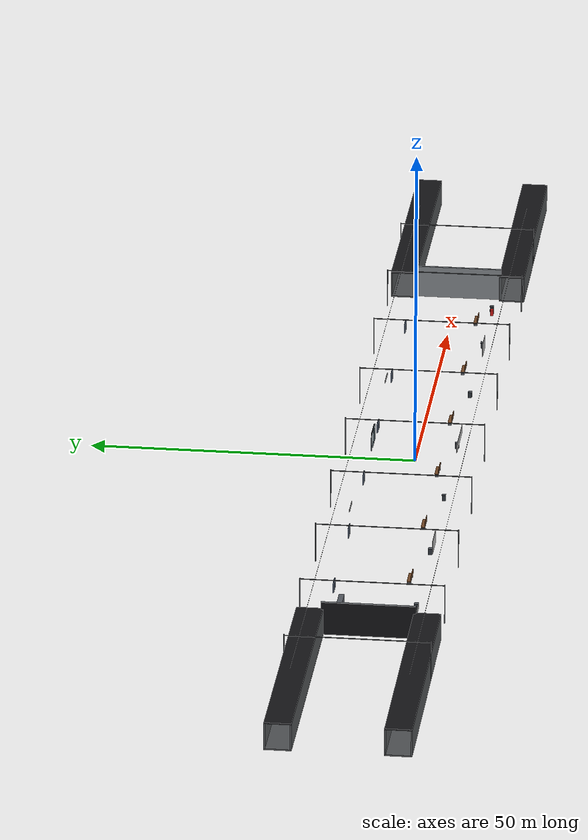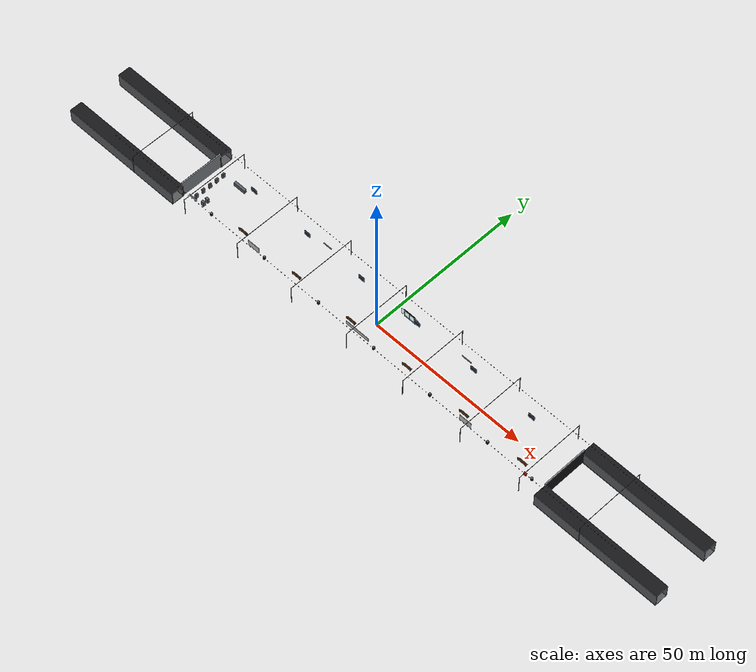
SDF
<sdf version="1.8">
 <world name="metro_station">
  <model name="station_furniture">
   <static>true</static>
   <link name="furniture_link">
    <visual name="bench_seat_0">
     <pose>-45 -4.0 0.78 0 0 0</pose>
     <geometry><box><size>3.0 0.62 0.12</size></box></geometry>
     <material><ambient>0.35 0.22 0.12 1</ambient><diffuse>0.48 0.30 0.16 1</diffuse></material>
    </visual>
    <visual name="bench_back_0">
     <pose>-45 -4.28 1.18 0 0 0</pose>
     <geometry><box><size>3.0 0.10 0.70</size></box></geometry>
     <material><ambient>0.35 0.22 0.12 1</ambient><diffuse>0.48 0.30 0.16 1</diffuse></material>
    </visual>
    <visual name="bench_leg_0_0">
     <pose>-46.25 -4.0 0.48 0 0 0</pose>
     <geometry><box><size>0.10 0.55 0.36</size></box></geometry>
     <material><ambient>0.25 0.27 0.29 1</ambient><diffuse>0.35 0.37 0.40 1</diffuse></material>
    </visual>
    <visual name="bench_leg_0_1">
     <pose>-43.75 -4.0 0.48 0 0 0</pose>
     <geometry><box><size>0.10 0.55 0.36</size></box></geometry>
     <material><ambient>0.25 0.27 0.29 1</ambient><diffuse>0.35 0.37 0.40 1</diffuse></material>
    </visual>
    <visual name="bench_seat_1">
     <pose>-25 -4.0 0.78 0 0 0</pose>
     <geometry><box><size>3.0 0.62 0.12</size></box></geometry>
     <material><ambient>0.35 0.22 0.12 1</ambient><diffuse>0.48 0.30 0.16 1</diffuse></material>
    </visual>
    <visual name="bench_back_1">
     <pose>-25 -4.28 1.18 0 0 0</pose>
     <geometry><box><size>3.0 0.10 0.70</size></box></geometry>
     <material><ambient>0.35 0.22 0.12 1</ambient><diffuse>0.48 0.30 0.16 1</diffuse></material>
    </visual>
    <visual name="bench_leg_1_0">
     <pose>-26.25 -4.0 0.48 0 0 0</pose>
     <geometry><box><size>0.10 0.55 0.36</size></box></geometry>
     <material><ambient>0.25 0.27 0.29 1</ambient><diffuse>0.35 0.37 0.40 1</diffuse></material>
    </visual>
    <visual name="bench_leg_1_1">
     <pose>-23.75 -4.0 0.48 0 0 0</pose>
     <geometry><box><size>0.10 0.55 0.36</size></box></geometry>
     <material><ambient>0.25 0.27 0.29 1</ambient><diffuse>0.35 0.37 0.40 1</diffuse></material>
    </visual>
    <visual name="bench_seat_2">
     <pose>-5 -4.0 0.78 0 0 0</pose>
     <geometry><box><size>3.0 0.62 0.12</size></box></geometry>
     <material><ambient>0.35 0.22 0.12 1</ambient><diffuse>0.48 0.30 0.16 1</diffuse></material>
    </visual>
    <visual name="bench_back_2">
     <pose>-5 -4.28 1.18 0 0 0</pose>
     <geometry><box><size>3.0 0.10 0.70</size></box></geometry>
     <material><ambient>0.35 0.22 0.12 1</ambient><diffuse>0.48 0.30 0.16 1</diffuse></material>
    </visual>
    <visual name="bench_leg_2_0">
     <pose>-6.25 -4.0 0.48 0 0 0</pose>
     <geometry><box><size>0.10 0.55 0.36</size></box></geometry>
     <material><ambient>0.25 0.27 0.29 1</ambient><diffuse>0.35 0.37 0.40 1</diffuse></material>
    </visual>
    <visual name="bench_leg_2_1">
     <pose>-3.75 -4.0 0.48 0 0 0</pose>
     <geometry><box><size>0.10 0.55 0.36</size></box></geometry>
     <material><ambient>0.25 0.27 0.29 1</ambient><diffuse>0.35 0.37 0.40 1</diffuse></material>
    </visual>
    <visual name="bench_seat_3">
     <pose>15 -4.0 0.78 0 0 0</pose>
     <geometry><box><size>3.0 0.62 0.12</size></box></geometry>
     <material><ambient>0.35 0.22 0.12 1</ambient><diffuse>0.48 0.30 0.16 1</diffuse></material>
    </visual>
    <visual name="bench_back_3">
     <pose>15 -4.28 1.18 0 0 0</pose>
     <geometry><box><size>3.0 0.10 0.70</size></box></geometry>
     <material><ambient>0.35 0.22 0.12 1</ambient><diffuse>0.48 0.30 0.16 1</diffuse></material>
    </visual>
    <visual name="bench_leg_3_0">
     <pose>13.75 -4.0 0.48 0 0 0</pose>
     <geometry><box><size>0.10 0.55 0.36</size></box></geometry>
     <material><ambient>0.25 0.27 0.29 1</ambient><diffuse>0.35 0.37 0.40 1</diffuse></material>
    </visual>
    <visual name="bench_leg_3_1">
     <pose>16.25 -4.0 0.48 0 0 0</pose>
     <geometry><box><size>0.10 0.55 0.36</size></box></geometry>
     <material><ambient>0.25 0.27 0.29 1</ambient><diffuse>0.35 0.37 0.40 1</diffuse></material>
    </visual>
    <visual name="bench_seat_4">
     <pose>35 -4.0 0.78 0 0 0</pose>
     <geometry><box><size>3.0 0.62 0.12</size></box></geometry>
     <material><ambient>0.35 0.22 0.12 1</ambient><diffuse>0.48 0.30 0.16 1</diffuse></material>
    </visual>
    <visual name="bench_back_4">
     <pose>35 -4.28 1.18 0 0 0</pose>
     <geometry><box><size>3.0 0.10 0.70</size></box></geometry>
     <material><ambient>0.35 0.22 0.12 1</ambient><diffuse>0.48 0.30 0.16 1</diffuse></material>
    </visual>
    <visual name="bench_leg_4_0">
     <pose>33.75 -4.0 0.48 0 0 0</pose>
     <geometry><box><size>0.10 0.55 0.36</size></box></geometry>
     <material><ambient>0.25 0.27 0.29 1</ambient><diffuse>0.35 0.37 0.40 1</diffuse></material>
    </visual>
    <visual name="bench_leg_4_1">
     <pose>36.25 -4.0 0.48 0 0 0</pose>
     <geometry><box><size>0.10 0.55 0.36</size></box></geometry>
     <material><ambient>0.25 0.27 0.29 1</ambient><diffuse>0.35 0.37 0.40 1</diffuse></material>
    </visual>
    <visual name="bench_seat_5">
     <pose>55 -4.0 0.78 0 0 0</pose>
     <geometry><box><size>3.0 0.62 0.12</size></box></geometry>
     <material><ambient>0.35 0.22 0.12 1</ambient><diffuse>0.48 0.30 0.16 1</diffuse></material>
    </visual>
    <visual name="bench_back_5">
     <pose>55 -4.28 1.18 0 0 0</pose>
     <geometry><box><size>3.0 0.10 0.70</size></box></geometry>
     <material><ambient>0.35 0.22 0.12 1</ambient><diffuse>0.48 0.30 0.16 1</diffuse></material>
    </visual>
    <visual name="bench_leg_5_0">
     <pose>53.75 -4.0 0.48 0 0 0</pose>
     <geometry><box><size>0.10 0.55 0.36</size></box></geometry>
     <material><ambient>0.25 0.27 0.29 1</ambient><diffuse>0.35 0.37 0.40 1</diffuse></material>
    </visual>
    <visual name="bench_leg_5_1">
     <pose>56.25 -4.0 0.48 0 0 0</pose>
     <geometry><box><size>0.10 0.55 0.36</size></box></geometry>
     <material><ambient>0.25 0.27 0.29 1</ambient><diffuse>0.35 0.37 0.40 1</diffuse></material>
    </visual>
    <visual name="bin_0">
     <pose>-55 -6.0 0.75 0 0 0</pose>
     <geometry><box><size>0.55 0.55 0.90</size></box></geometry>
     <material><ambient>0.12 0.14 0.16 1</ambient><diffuse>0.18 0.20 0.23 1</diffuse></material>
    </visual>
    <visual name="bin_lid_0">
     <pose>-55 -6.0 1.23 0 0 0</pose>
     <geometry><box><size>0.60 0.60 0.06</size></box></geometry>
     <material><ambient>0.25 0.27 0.29 1</ambient><diffuse>0.35 0.37 0.40 1</diffuse></material>
    </visual>
    <visual name="bin_1">
     <pose>-35 -6.0 0.75 0 0 0</pose>
     <geometry><box><size>0.55 0.55 0.90</size></box></geometry>
     <material><ambient>0.12 0.14 0.16 1</ambient><diffuse>0.18 0.20 0.23 1</diffuse></material>
    </visual>
    <visual name="bin_lid_1">
     <pose>-35 -6.0 1.23 0 0 0</pose>
     <geometry><box><size>0.60 0.60 0.06</size></box></geometry>
     <material><ambient>0.25 0.27 0.29 1</ambient><diffuse>0.35 0.37 0.40 1</diffuse></material>
    </visual>
    <visual name="bin_2">
     <pose>-15 -6.0 0.75 0 0 0</pose>
     <geometry><box><size>0.55 0.55 0.90</size></box></geometry>
     <material><ambient>0.12 0.14 0.16 1</ambient><diffuse>0.18 0.20 0.23 1</diffuse></material>
    </visual>
    <visual name="bin_lid_2">
     <pose>-15 -6.0 1.23 0 0 0</pose>
     <geometry><box><size>0.60 0.60 0.06</size></box></geometry>
     <material><ambient>0.25 0.27 0.29 1</ambient><diffuse>0.35 0.37 0.40 1</diffuse></material>
    </visual>
    <visual name="bin_3">
     <pose>5 -6.0 0.75 0 0 0</pose>
     <geometry><box><size>0.55 0.55 0.90</size></box></geometry>
     <material><ambient>0.12 0.14 0.16 1</ambient><diffuse>0.18 0.20 0.23 1</diffuse></material>
    </visual>
    <visual name="bin_lid_3">
     <pose>5 -6.0 1.23 0 0 0</pose>
     <geometry><box><size>0.60 0.60 0.06</size></box></geometry>
     <material><ambient>0.25 0.27 0.29 1</ambient><diffuse>0.35 0.37 0.40 1</diffuse></material>
    </visual>
    <visual name="bin_4">
     <pose>25 -6.0 0.75 0 0 0</pose>
     <geometry><box><size>0.55 0.55 0.90</size></box></geometry>
     <material><ambient>0.12 0.14 0.16 1</ambient><diffuse>0.18 0.20 0.23 1</diffuse></material>
    </visual>
    <visual name="bin_lid_4">
     <pose>25 -6.0 1.23 0 0 0</pose>
     <geometry><box><size>0.60 0.60 0.06</size></box></geometry>
     <material><ambient>0.25 0.27 0.29 1</ambient><diffuse>0.35 0.37 0.40 1</diffuse></material>
    </visual>
    <visual name="bin_5">
     <pose>45 -6.0 0.75 0 0 0</pose>
     <geometry><box><size>0.55 0.55 0.90</size></box></geometry>
     <material><ambient>0.12 0.14 0.16 1</ambient><diffuse>0.18 0.20 0.23 1</diffuse></material>
    </visual>
    <visual name="bin_lid_5">
     <pose>45 -6.0 1.23 0 0 0</pose>
     <geometry><box><size>0.60 0.60 0.06</size></box></geometry>
     <material><ambient>0.25 0.27 0.29 1</ambient><diffuse>0.35 0.37 0.40 1</diffuse></material>
    </visual>
    <visual name="bin_6">
     <pose>60 -6.0 0.75 0 0 0</pose>
     <geometry><box><size>0.55 0.55 0.90</size></box></geometry>
     <material><ambient>0.12 0.14 0.16 1</ambient><diffuse>0.18 0.20 0.23 1</diffuse></material>
    </visual>
    <visual name="bin_lid_6">
     <pose>60 -6.0 1.23 0 0 0</pose>
     <geometry><box><size>0.60 0.60 0.06</size></box></geometry>
     <material><ambient>0.25 0.27 0.29 1</ambient><diffuse>0.35 0.37 0.40 1</diffuse></material>
    </visual>
    <visual name="ad_box_0">
     <pose>-52 6.55 2.1 0 0 0</pose>
     <geometry><box><size>2.0 0.12 1.4</size></box></geometry>
     <material>
      <ambient>0.92 0.92 0.88 1</ambient>
      <diffuse>1.0 1.0 0.96 1</diffuse>
      <emissive>0.25 0.25 0.23 1</emissive>
     </material>
    </visual>
    <visual name="ad_box_1">
     <pose>-32 6.55 2.1 0 0 0</pose>
     <geometry><box><size>2.0 0.12 1.4</size></box></geometry>
     <material>
      <ambient>0.92 0.92 0.88 1</ambient>
      <diffuse>1.0 1.0 0.96 1</diffuse>
      <emissive>0.25 0.25 0.23 1</emissive>
     </material>
    </visual>
    <visual name="ad_box_2">
     <pose>-12 6.55 2.1 0 0 0</pose>
     <geometry><box><size>2.0 0.12 1.4</size></box></geometry>
     <material>
      <ambient>0.92 0.92 0.88 1</ambient>
      <diffuse>1.0 1.0 0.96 1</diffuse>
      <emissive>0.25 0.25 0.23 1</emissive>
     </material>
    </visual>
    <visual name="ad_box_3">
     <pose>8 6.55 2.1 0 0 0</pose>
     <geometry><box><size>2.0 0.12 1.4</size></box></geometry>
     <material>
      <ambient>0.92 0.92 0.88 1</ambient>
      <diffuse>1.0 1.0 0.96 1</diffuse>
      <emissive>0.25 0.25 0.23 1</emissive>
     </material>
    </visual>
    <visual name="ad_box_4">
     <pose>28 6.55 2.1 0 0 0</pose>
     <geometry><box><size>2.0 0.12 1.4</size></box></geometry>
     <material>
      <ambient>0.92 0.92 0.88 1</ambient>
      <diffuse>1.0 1.0 0.96 1</diffuse>
      <emissive>0.25 0.25 0.23 1</emissive>
     </material>
    </visual>
    <visual name="ad_box_5">
     <pose>48 6.55 2.1 0 0 0</pose>
     <geometry><box><size>2.0 0.12 1.4</size></box></geometry>
     <material>
      <ambient>0.92 0.92 0.88 1</ambient>
      <diffuse>1.0 1.0 0.96 1</diffuse>
      <emissive>0.25 0.25 0.23 1</emissive>
     </material>
    </visual>
    <visual name="gate_pillar_0">
     <pose>-62 -4.8 1.05 0 0 0</pose>
     <geometry><box><size>0.55 0.90 1.50</size></box></geometry>
     <material><ambient>0.25 0.27 0.29 1</ambient><diffuse>0.35 0.37 0.40 1</diffuse></material>
    </visual>
    <visual name="gate_light_0">
     <pose>-62 -4.8 1.72 0 0 0</pose>
     <geometry><box><size>0.18 0.18 0.18</size></box></geometry>
     <material><ambient>0.05 0.35 0.18 1</ambient><diffuse>0.08 0.45 0.24 1</diffuse></material>
    </visual>
    <visual name="gate_pillar_1">
     <pose>-62 -2.4 1.05 0 0 0</pose>
     <geometry><box><size>0.55 0.90 1.50</size></box></geometry>
     <material><ambient>0.25 0.27 0.29 1</ambient><diffuse>0.35 0.37 0.40 1</diffuse></material>
    </visual>
    <visual name="gate_light_1">
     <pose>-62 -2.4 1.72 0 0 0</pose>
     <geometry><box><size>0.18 0.18 0.18</size></box></geometry>
     <material><ambient>0.65 0.08 0.06 1</ambient><diffuse>0.80 0.10 0.08 1</diffuse></material>
    </visual>
    <visual name="gate_pillar_2">
     <pose>-62 0.0 1.05 0 0 0</pose>
     <geometry><box><size>0.55 0.90 1.50</size></box></geometry>
     <material><ambient>0.25 0.27 0.29 1</ambient><diffuse>0.35 0.37 0.40 1</diffuse></material>
    </visual>
    <visual name="gate_light_2">
     <pose>-62 0.0 1.72 0 0 0</pose>
     <geometry><box><size>0.18 0.18 0.18</size></box></geometry>
     <material><ambient>0.05 0.35 0.18 1</ambient><diffuse>0.08 0.45 0.24 1</diffuse></material>
    </visual>
    <visual name="gate_pillar_3">
     <pose>-62 2.4 1.05 0 0 0</pose>
     <geometry><box><size>0.55 0.90 1.50</size></box></geometry>
     <material><ambient>0.25 0.27 0.29 1</ambient><diffuse>0.35 0.37 0.40 1</diffuse></material>
    </visual>
    <visual name="gate_light_3">
     <pose>-62 2.4 1.72 0 0 0</pose>
     <geometry><box><size>0.18 0.18 0.18</size></box></geometry>
     <material><ambient>0.65 0.08 0.06 1</ambient><diffuse>0.80 0.10 0.08 1</diffuse></material>
    </visual>
    <visual name="gate_pillar_4">
     <pose>-62 4.8 1.05 0 0 0</pose>
     <geometry><box><size>0.55 0.90 1.50</size></box></geometry>
     <material><ambient>0.25 0.27 0.29 1</ambient><diffuse>0.35 0.37 0.40 1</diffuse></material>
    </visual>
    <visual name="gate_light_4">
     <pose>-62 4.8 1.72 0 0 0</pose>
     <geometry><box><size>0.18 0.18 0.18</size></box></geometry>
     <material><ambient>0.05 0.35 0.18 1</ambient><diffuse>0.08 0.45 0.24 1</diffuse></material>
    </visual>
    <visual name="ticket_machine_a">
     <pose>-59 -5.2 1.05 0 0 0</pose>
     <geometry><box><size>1.0 0.70 1.50</size></box></geometry>
     <material><ambient>0.25 0.27 0.29 1</ambient><diffuse>0.35 0.37 0.40 1</diffuse></material>
    </visual>
    <visual name="ticket_machine_b">
     <pose>-59 -3.8 1.05 0 0 0</pose>
     <geometry><box><size>1.0 0.70 1.50</size></box></geometry>
     <material><ambient>0.25 0.27 0.29 1</ambient><diffuse>0.35 0.37 0.40 1</diffuse></material>
    </visual>
    <visual name="fire_cabinet">
     <pose>58 -6.2 1.0 0 0 0</pose>
     <geometry><box><size>0.80 0.45 0.90</size></box></geometry>
     <material><ambient>0.65 0.08 0.06 1</ambient><diffuse>0.80 0.10 0.08 1</diffuse></material>
    </visual>
    <visual name="service_desk">
     <pose>-56 5.2 1.05 0 0 0</pose>
     <geometry><box><size>4.0 0.80 1.20</size></box></geometry>
     <material><ambient>0.25 0.27 0.29 1</ambient><diffuse>0.35 0.37 0.40 1</diffuse></material>
    </visual>
   </link>
  </model>
  <model name="station_signage">
   <static>true</static>
   <link name="signage_link">
    <visual name="station_name_board">
     <pose>0 -6.82 4.05 0 0 0</pose>
     <geometry><box><size>8.0 0.08 1.2</size></box></geometry>
     <material>
      <pbr>
       <metal>
        <albedo_map>model://metro_station/textures/station_name.png</albedo_map>
        <roughness>0.65</roughness>
        <metalness>0.05</metalness>
       </metal>
      </pbr>
     </material>
    </visual>
    <visual name="line_map_west">
     <pose>-38 -6.82 3.55 0 0 0</pose>
     <geometry><box><size>4.0 0.08 2.0</size></box></geometry>
     <material>
      <pbr>
       <metal>
        <albedo_map>model://metro_station/textures/line_map.png</albedo_map>
        <roughness>0.65</roughness>
        <metalness>0.05</metalness>
       </metal>
      </pbr>
     </material>
    </visual>
    <visual name="line_map_east">
     <pose>38 -6.82 3.55 0 0 0</pose>
     <geometry><box><size>4.0 0.08 2.0</size></box></geometry>
     <material>
      <pbr>
       <metal>
        <albedo_map>model://metro_station/textures/line_map.png</albedo_map>
        <roughness>0.65</roughness>
        <metalness>0.05</metalness>
       </metal>
      </pbr>
     </material>
    </visual>
    <visual name="exit_board_west">
     <pose>-61 -6.82 3.1 0 0 0</pose>
     <geometry><box><size>2.8 0.08 0.7</size></box></geometry>
     <material>
      <pbr>
       <metal>
        <albedo_map>model://metro_station/textures/exit_sign.png</albedo_map>
        <roughness>0.65</roughness>
        <metalness>0.05</metalness>
       </metal>
      </pbr>
     </material>
    </visual>
    <visual name="mind_gap_board_01">
     <pose>-25 7.12 2.95 0 0 0</pose>
     <geometry><box><size>3.2 0.06 0.45</size></box></geometry>
     <material>
      <pbr>
       <metal>
        <albedo_map>model://metro_station/textures/mind_the_gap.png</albedo_map>
        <roughness>0.65</roughness>
        <metalness>0.05</metalness>
       </metal>
      </pbr>
     </material>
    </visual>
    <visual name="mind_gap_board_02">
     <pose>25 7.12 2.95 0 0 0</pose>
     <geometry><box><size>3.2 0.06 0.45</size></box></geometry>
     <material>
      <pbr>
       <metal>
        <albedo_map>model://metro_station/textures/mind_the_gap.png</albedo_map>
        <roughness>0.65</roughness>
        <metalness>0.05</metalness>
       </metal>
      </pbr>
     </material>
    </visual>
    <visual name="ad_frame_0">
     <pose>-52 6.55 2.1 0 0 0</pose>
     <geometry><box><size>2.1 0.16 1.5</size></box></geometry>
     <material><ambient>0.05 0.08 0.12 1</ambient><diffuse>0.08 0.12 0.18 1</diffuse></material>
    </visual>
    <visual name="ad_frame_1">
     <pose>-32 6.55 2.1 0 0 0</pose>
     <geometry><box><size>2.1 0.16 1.5</size></box></geometry>
     <material><ambient>0.05 0.08 0.12 1</ambient><diffuse>0.08 0.12 0.18 1</diffuse></material>
    </visual>
    <visual name="ad_frame_2">
     <pose>-12 6.55 2.1 0 0 0</pose>
     <geometry><box><size>2.1 0.16 1.5</size></box></geometry>
     <material><ambient>0.05 0.08 0.12 1</ambient><diffuse>0.08 0.12 0.18 1</diffuse></material>
    </visual>
    <visual name="ad_frame_3">
     <pose>8 6.55 2.1 0 0 0</pose>
     <geometry><box><size>2.1 0.16 1.5</size></box></geometry>
     <material><ambient>0.05 0.08 0.12 1</ambient><diffuse>0.08 0.12 0.18 1</diffuse></material>
    </visual>
    <visual name="ad_frame_4">
     <pose>28 6.55 2.1 0 0 0</pose>
     <geometry><box><size>2.1 0.16 1.5</size></box></geometry>
     <material><ambient>0.05 0.08 0.12 1</ambient><diffuse>0.08 0.12 0.18 1</diffuse></material>
    </visual>
    <visual name="ad_frame_5">
     <pose>48 6.55 2.1 0 0 0</pose>
     <geometry><box><size>2.1 0.16 1.5</size></box></geometry>
     <material><ambient>0.05 0.08 0.12 1</ambient><diffuse>0.08 0.12 0.18 1</diffuse></material>
    </visual>
   </link>
  </model>
  <model name="tunnel_positive_y">
   <static>true</static>
   <link name="tunnel_link_positive_y">
    <visual name="tunnel_floor_positive_y_w">
     <pose>-85.0 8.65 0.10 0 0 0</pose>
     <geometry><box><size>40.0 4.0 0.20</size></box></geometry>
     <material><ambient>0.24 0.25 0.26 1</ambient><diffuse>0.33 0.34 0.35 1</diffuse></material>
    </visual>
    <visual name="tunnel_ceiling_positive_y_w">
     <pose>-85.0 8.65 4.20 0 0 0</pose>
     <geometry><box><size>40.0 4.0 0.20</size></box></geometry>
     <material><ambient>0.05 0.05 0.06 1</ambient><diffuse>0.09 0.09 0.10 1</diffuse></material>
    </visual>
    <visual name="tunnel_wall_inner_positive_y_w">
     <pose>-85.0 6.75 2.10 0 0 0</pose>
     <geometry><box><size>40.0 0.20 4.0</size></box></geometry>
     <material><ambient>0.24 0.25 0.26 1</ambient><diffuse>0.33 0.34 0.35 1</diffuse></material>
    </visual>
    <visual name="tunnel_wall_outer_positive_y_w">
     <pose>-85.0 10.55 2.10 0 0 0</pose>
     <geometry><box><size>40.0 0.20 4.0</size></box></geometry>
     <material><ambient>0.24 0.25 0.26 1</ambient><diffuse>0.33 0.34 0.35 1</diffuse></material>
    </visual>
    <visual name="tunnel_floor_positive_y_e">
     <pose>85.0 8.65 0.10 0 0 0</pose>
     <geometry><box><size>40.0 4.0 0.20</size></box></geometry>
     <material><ambient>0.24 0.25 0.26 1</ambient><diffuse>0.33 0.34 0.35 1</diffuse></material>
    </visual>
    <visual name="tunnel_ceiling_positive_y_e">
     <pose>85.0 8.65 4.20 0 0 0</pose>
     <geometry><box><size>40.0 4.0 0.20</size></box></geometry>
     <material><ambient>0.05 0.05 0.06 1</ambient><diffuse>0.09 0.09 0.10 1</diffuse></material>
    </visual>
    <visual name="tunnel_wall_inner_positive_y_e">
     <pose>85.0 6.75 2.10 0 0 0</pose>
     <geometry><box><size>40.0 0.20 4.0</size></box></geometry>
     <material><ambient>0.24 0.25 0.26 1</ambient><diffuse>0.33 0.34 0.35 1</diffuse></material>
    </visual>
    <visual name="tunnel_wall_outer_positive_y_e">
     <pose>85.0 10.55 2.10 0 0 0</pose>
     <geometry><box><size>40.0 0.20 4.0</size></box></geometry>
     <material><ambient>0.24 0.25 0.26 1</ambient><diffuse>0.33 0.34 0.35 1</diffuse></material>
    </visual>
   </link>
  </model>
  <model name="tunnel_negative_y">
   <static>true</static>
   <link name="tunnel_link_negative_y">
    <visual name="tunnel_floor_negative_y_w">
     <pose>-85.0 -8.65 0.10 0 0 0</pose>
     <geometry><box><size>40.0 4.0 0.20</size></box></geometry>
     <material><ambient>0.24 0.25 0.26 1</ambient><diffuse>0.33 0.34 0.35 1</diffuse></material>
    </visual>
    <visual name="tunnel_ceiling_negative_y_w">
     <pose>-85.0 -8.65 4.20 0 0 0</pose>
     <geometry><box><size>40.0 4.0 0.20</size></box></geometry>
     <material><ambient>0.05 0.05 0.06 1</ambient><diffuse>0.09 0.09 0.10 1</diffuse></material>
    </visual>
    <visual name="tunnel_wall_inner_negative_y_w">
     <pose>-85.0 -10.55 2.10 0 0 0</pose>
     <geometry><box><size>40.0 0.20 4.0</size></box></geometry>
     <material><ambient>0.24 0.25 0.26 1</ambient><diffuse>0.33 0.34 0.35 1</diffuse></material>
    </visual>
    <visual name="tunnel_wall_outer_negative_y_w">
     <pose>-85.0 -6.75 2.10 0 0 0</pose>
     <geometry><box><size>40.0 0.20 4.0</size></box></geometry>
     <material><ambient>0.24 0.25 0.26 1</ambient><diffuse>0.33 0.34 0.35 1</diffuse></material>
    </visual>
    <visual name="tunnel_floor_negative_y_e">
     <pose>85.0 -8.65 0.10 0 0 0</pose>
     <geometry><box><size>40.0 4.0 0.20</size></box></geometry>
     <material><ambient>0.24 0.25 0.26 1</ambient><diffuse>0.33 0.34 0.35 1</diffuse></material>
    </visual>
    <visual name="tunnel_ceiling_negative_y_e">
     <pose>85.0 -8.65 4.20 0 0 0</pose>
     <geometry><box><size>40.0 4.0 0.20</size></box></geometry>
     <material><ambient>0.05 0.05 0.06 1</ambient><diffuse>0.09 0.09 0.10 1</diffuse></material>
    </visual>
    <visual name="tunnel_wall_inner_negative_y_e">
     <pose>85.0 -10.55 2.10 0 0 0</pose>
     <geometry><box><size>40.0 0.20 4.0</size></box></geometry>
     <material><ambient>0.24 0.25 0.26 1</ambient><diffuse>0.33 0.34 0.35 1</diffuse></material>
    </visual>
    <visual name="tunnel_wall_outer_negative_y_e">
     <pose>85.0 -6.75 2.10 0 0 0</pose>
     <geometry><box><size>40.0 0.20 4.0</size></box></geometry>
     <material><ambient>0.24 0.25 0.26 1</ambient><diffuse>0.33 0.34 0.35 1</diffuse></material>
    </visual>
   </link>
  </model>
  <model name="station_end_walls">
   <static>true</static>
   <link name="end_wall_link">
    <visual name="end_wall_w">
     <pose>-65.2 0 2.85 0 0 0</pose>
     <geometry><box><size>0.35 14.0 5.10</size></box></geometry>
     <material><ambient>0.38 0.40 0.42 1</ambient><diffuse>0.50 0.52 0.54 1</diffuse></material>
    </visual>
    <visual name="end_wall_trim_w">
     <pose>-65.4 0 2.85 0 0 0</pose>
     <geometry><box><size>0.06 14.0 5.10</size></box></geometry>
     <material><ambient>0.04 0.04 0.05 1</ambient><diffuse>0.07 0.07 0.08 1</diffuse></material>
    </visual>
    <visual name="end_wall_e">
     <pose>65.2 0 2.85 0 0 0</pose>
     <geometry><box><size>0.35 14.0 5.10</size></box></geometry>
     <material><ambient>0.38 0.40 0.42 1</ambient><diffuse>0.50 0.52 0.54 1</diffuse></material>
    </visual>
    <visual name="end_wall_trim_e">
     <pose>65.4 0 2.85 0 0 0</pose>
     <geometry><box><size>0.06 14.0 5.10</size></box></geometry>
     <material><ambient>0.04 0.04 0.05 1</ambient><diffuse>0.07 0.07 0.08 1</diffuse></material>
    </visual>
   </link>
  </model>
  <model name="overhead_line">
   <static>true</static>
   <link name="overhead_link">
    <visual name="catenary_pole_0_n">
     <pose>-80 -10.7 3.6 0 0 0</pose>
     <geometry><box><size>0.12 0.12 6.2</size></box></geometry>
     <material><ambient>0.26 0.27 0.28 1</ambient><diffuse>0.36 0.37 0.38 1</diffuse></material>
    </visual>
    <visual name="catenary_pole_0_p">
     <pose>-80 10.7 3.6 0 0 0</pose>
     <geometry><box><size>0.12 0.12 6.2</size></box></geometry>
     <material><ambient>0.26 0.27 0.28 1</ambient><diffuse>0.36 0.37 0.38 1</diffuse></material>
    </visual>
    <visual name="catenary_cross_0">
     <pose>-80 0 6.55 0 0 0</pose>
     <geometry><box><size>0.10 21.5 0.10</size></box></geometry>
     <material><ambient>0.26 0.27 0.28 1</ambient><diffuse>0.36 0.37 0.38 1</diffuse></material>
    </visual>
    <visual name="catenary_pole_1_n">
     <pose>-60 -10.7 3.6 0 0 0</pose>
     <geometry><box><size>0.12 0.12 6.2</size></box></geometry>
     <material><ambient>0.26 0.27 0.28 1</ambient><diffuse>0.36 0.37 0.38 1</diffuse></material>
    </visual>
    <visual name="catenary_pole_1_p">
     <pose>-60 10.7 3.6 0 0 0</pose>
     <geometry><box><size>0.12 0.12 6.2</size></box></geometry>
     <material><ambient>0.26 0.27 0.28 1</ambient><diffuse>0.36 0.37 0.38 1</diffuse></material>
    </visual>
    <visual name="catenary_cross_1">
     <pose>-60 0 6.55 0 0 0</pose>
     <geometry><box><size>0.10 21.5 0.10</size></box></geometry>
     <material><ambient>0.26 0.27 0.28 1</ambient><diffuse>0.36 0.37 0.38 1</diffuse></material>
    </visual>
    <visual name="catenary_pole_2_n">
     <pose>-40 -10.7 3.6 0 0 0</pose>
     <geometry><box><size>0.12 0.12 6.2</size></box></geometry>
     <material><ambient>0.26 0.27 0.28 1</ambient><diffuse>0.36 0.37 0.38 1</diffuse></material>
    </visual>
    <visual name="catenary_pole_2_p">
     <pose>-40 10.7 3.6 0 0 0</pose>
     <geometry><box><size>0.12 0.12 6.2</size></box></geometry>
     <material><ambient>0.26 0.27 0.28 1</ambient><diffuse>0.36 0.37 0.38 1</diffuse></material>
    </visual>
    <visual name="catenary_cross_2">
     <pose>-40 0 6.55 0 0 0</pose>
     <geometry><box><size>0.10 21.5 0.10</size></box></geometry>
     <material><ambient>0.26 0.27 0.28 1</ambient><diffuse>0.36 0.37 0.38 1</diffuse></material>
    </visual>
    <visual name="catenary_pole_3_n">
     <pose>-20 -10.7 3.6 0 0 0</pose>
     <geometry><box><size>0.12 0.12 6.2</size></box></geometry>
     <material><ambient>0.26 0.27 0.28 1</ambient><diffuse>0.36 0.37 0.38 1</diffuse></material>
    </visual>
    <visual name="catenary_pole_3_p">
     <pose>-20 10.7 3.6 0 0 0</pose>
     <geometry><box><size>0.12 0.12 6.2</size></box></geometry>
     <material><ambient>0.26 0.27 0.28 1</ambient><diffuse>0.36 0.37 0.38 1</diffuse></material>
    </visual>
    <visual name="catenary_cross_3">
     <pose>-20 0 6.55 0 0 0</pose>
     <geometry><box><size>0.10 21.5 0.10</size></box></geometry>
     <material><ambient>0.26 0.27 0.28 1</ambient><diffuse>0.36 0.37 0.38 1</diffuse></material>
    </visual>
    <visual name="catenary_pole_4_n">
     <pose>0 -10.7 3.6 0 0 0</pose>
     <geometry><box><size>0.12 0.12 6.2</size></box></geometry>
     <material><ambient>0.26 0.27 0.28 1</ambient><diffuse>0.36 0.37 0.38 1</diffuse></material>
    </visual>
    <visual name="catenary_pole_4_p">
     <pose>0 10.7 3.6 0 0 0</pose>
     <geometry><box><size>0.12 0.12 6.2</size></box></geometry>
     <material><ambient>0.26 0.27 0.28 1</ambient><diffuse>0.36 0.37 0.38 1</diffuse></material>
    </visual>
    <visual name="catenary_cross_4">
     <pose>0 0 6.55 0 0 0</pose>
     <geometry><box><size>0.10 21.5 0.10</size></box></geometry>
     <material><ambient>0.26 0.27 0.28 1</ambient><diffuse>0.36 0.37 0.38 1</diffuse></material>
    </visual>
    <visual name="catenary_pole_5_n">
     <pose>20 -10.7 3.6 0 0 0</pose>
     <geometry><box><size>0.12 0.12 6.2</size></box></geometry>
     <material><ambient>0.26 0.27 0.28 1</ambient><diffuse>0.36 0.37 0.38 1</diffuse></material>
    </visual>
    <visual name="catenary_pole_5_p">
     <pose>20 10.7 3.6 0 0 0</pose>
     <geometry><box><size>0.12 0.12 6.2</size></box></geometry>
     <material><ambient>0.26 0.27 0.28 1</ambient><diffuse>0.36 0.37 0.38 1</diffuse></material>
    </visual>
    <visual name="catenary_cross_5">
     <pose>20 0 6.55 0 0 0</pose>
     <geometry><box><size>0.10 21.5 0.10</size></box></geometry>
     <material><ambient>0.26 0.27 0.28 1</ambient><diffuse>0.36 0.37 0.38 1</diffuse></material>
    </visual>
    <visual name="catenary_pole_6_n">
     <pose>40 -10.7 3.6 0 0 0</pose>
     <geometry><box><size>0.12 0.12 6.2</size></box></geometry>
     <material><ambient>0.26 0.27 0.28 1</ambient><diffuse>0.36 0.37 0.38 1</diffuse></material>
    </visual>
    <visual name="catenary_pole_6_p">
     <pose>40 10.7 3.6 0 0 0</pose>
     <geometry><box><size>0.12 0.12 6.2</size></box></geometry>
     <material><ambient>0.26 0.27 0.28 1</ambient><diffuse>0.36 0.37 0.38 1</diffuse></material>
    </visual>
    <visual name="catenary_cross_6">
     <pose>40 0 6.55 0 0 0</pose>
     <geometry><box><size>0.10 21.5 0.10</size></box></geometry>
     <material><ambient>0.26 0.27 0.28 1</ambient><diffuse>0.36 0.37 0.38 1</diffuse></material>
    </visual>
    <visual name="catenary_pole_7_n">
     <pose>60 -10.7 3.6 0 0 0</pose>
     <geometry><box><size>0.12 0.12 6.2</size></box></geometry>
     <material><ambient>0.26 0.27 0.28 1</ambient><diffuse>0.36 0.37 0.38 1</diffuse></material>
    </visual>
    <visual name="catenary_pole_7_p">
     <pose>60 10.7 3.6 0 0 0</pose>
     <geometry><box><size>0.12 0.12 6.2</size></box></geometry>
     <material><ambient>0.26 0.27 0.28 1</ambient><diffuse>0.36 0.37 0.38 1</diffuse></material>
    </visual>
    <visual name="catenary_cross_7">
     <pose>60 0 6.55 0 0 0</pose>
     <geometry><box><size>0.10 21.5 0.10</size></box></geometry>
     <material><ambient>0.26 0.27 0.28 1</ambient><diffuse>0.36 0.37 0.38 1</diffuse></material>
    </visual>
    <visual name="catenary_pole_8_n">
     <pose>80 -10.7 3.6 0 0 0</pose>
     <geometry><box><size>0.12 0.12 6.2</size></box></geometry>
     <material><ambient>0.26 0.27 0.28 1</ambient><diffuse>0.36 0.37 0.38 1</diffuse></material>
    </visual>
    <visual name="catenary_pole_8_p">
     <pose>80 10.7 3.6 0 0 0</pose>
     <geometry><box><size>0.12 0.12 6.2</size></box></geometry>
     <material><ambient>0.26 0.27 0.28 1</ambient><diffuse>0.36 0.37 0.38 1</diffuse></material>
    </visual>
    <visual name="catenary_cross_8">
     <pose>80 0 6.55 0 0 0</pose>
     <geometry><box><size>0.10 21.5 0.10</size></box></geometry>
     <material><ambient>0.26 0.27 0.28 1</ambient><diffuse>0.36 0.37 0.38 1</diffuse></material>
    </visual>
    <visual name="contact_wire_n">
     <pose>0 -8.65 6.0 0 0 0</pose>
     <geometry><box><size>180.0 0.025 0.025</size></box></geometry>
     <material><ambient>0.12 0.12 0.12 1</ambient><diffuse>0.20 0.20 0.20 1</diffuse></material>
    </visual>
    <visual name="contact_wire_p">
     <pose>0 8.65 6.0 0 0 0</pose>
     <geometry><box><size>180.0 0.025 0.025</size></box></geometry>
     <material><ambient>0.12 0.12 0.12 1</ambient><diffuse>0.20 0.20 0.20 1</diffuse></material>
    </visual>
   </link>
  </model>
  <model name="psd_unit_07">
   <static>true</static>
   <pose>5.0 0 0 0 0 0</pose>
   <link name="psd_frame_07">
    <collision name="psd_post_left_col_07">
     <pose>-1.90 7.02 1.10 0 0 0</pose>
     <geometry><box><size>0.20 0.10 2.20</size></box></geometry>
    </collision>
    <collision name="psd_post_right_col_07">
     <pose>1.90 7.02 1.10 0 0 0</pose>
     <geometry><box><size>0.20 0.10 2.20</size></box></geometry>
    </collision>
    <collision name="psd_header_col_07">
     <pose>0 7.02 2.70 0 0 0</pose>
     <geometry><box><size>4.00 0.10 0.30</size></box></geometry>
    </collision>
    <collision name="psd_threshold_col_07">
     <pose>0 7.02 0.325 0 0 0</pose>
     <geometry><box><size>4.00 0.10 0.05</size></box></geometry>
    </collision>
    <visual name="psd_post_left_vis_07">
     <pose>-1.90 7.02 1.10 0 0 0</pose>
     <geometry><box><size>0.20 0.10 2.20</size></box></geometry>
     <material>
      <ambient>0.22 0.25 0.28 1</ambient>
      <diffuse>0.30 0.34 0.38 1</diffuse>
      <specular>0.35 0.35 0.35 1</specular>
     </material>
    </visual>
    <visual name="psd_post_right_vis_07">
     <pose>1.90 7.02 1.10 0 0 0</pose>
     <geometry><box><size>0.20 0.10 2.20</size></box></geometry>
     <material>
      <ambient>0.22 0.25 0.28 1</ambient>
      <diffuse>0.30 0.34 0.38 1</diffuse>
      <specular>0.35 0.35 0.35 1</specular>
     </material>
    </visual>
    <visual name="psd_header_vis_07">
     <pose>0 7.02 2.70 0 0 0</pose>
     <geometry><box><size>4.00 0.10 0.30</size></box></geometry>
     <material><ambient>0.10 0.12 0.14 1</ambient><diffuse>0.16 0.18 0.20 1</diffuse></material>
    </visual>
    <visual name="psd_threshold_vis_07">
     <pose>0 7.02 0.325 0 0 0</pose>
     <geometry><box><size>4.00 0.10 0.05</size></box></geometry>
     <material>
      <ambient>0.22 0.25 0.28 1</ambient>
      <diffuse>0.30 0.34 0.38 1</diffuse>
      <specular>0.35 0.35 0.35 1</specular>
     </material>
    </visual>
    <visual name="psd_glass_left_vis_07">
     <pose>-2.55 7.02 1.45 0 0 0</pose>
     <transparency>0.65</transparency>
     <geometry><box><size>0.90 0.05 2.05</size></box></geometry>
     <material><ambient>0.55 0.75 0.82 1</ambient><diffuse>0.65 0.85 0.92 1</diffuse></material>
    </visual>
    <visual name="psd_glass_right_vis_07">
     <pose>2.55 7.02 1.45 0 0 0</pose>
     <transparency>0.65</transparency>
     <geometry><box><size>0.90 0.05 2.05</size></box></geometry>
     <material><ambient>0.55 0.75 0.82 1</ambient><diffuse>0.65 0.85 0.92 1</diffuse></material>
    </visual>
    <visual name="psd_unit_label_vis_07">
     <pose>0 7.10 2.70 0 0 0</pose>
     <geometry><box><size>0.30 0.02 0.16</size></box></geometry>
     <material>
      <ambient>0.95 0.72 0.04 1</ambient>
      <diffuse>0.98 0.78 0.08 1</diffuse>
      <emissive>0.35 0.25 0.02 1</emissive>
     </material>
    </visual>
    <visual name="psd_upper_panel_vis_07">
     <pose>0 7.02 2.46 0 0 0</pose>
     <geometry><box><size>3.60 0.06 0.18</size></box></geometry>
     <material>
      <ambient>0.22 0.25 0.28 1</ambient>
      <diffuse>0.30 0.34 0.38 1</diffuse>
      <specular>0.35 0.35 0.35 1</specular>
     </material>
    </visual>
   </link>
  </model>
  <model name="psd_door_07">
   <static>false</static>
   <allow_auto_disable>false</allow_auto_disable>
   <pose>5.0 0 0 0 0 0</pose>
   <link name="psd_base_07">
    <inertial>
     <mass>1.0</mass>
     <inertia><ixx>0.001</ixx><ixy>0</ixy><ixz>0</ixz><iyy>0.001</iyy><iyz>0</iyz><izz>0.001</izz></inertia>
    </inertial>
   </link>
   <link name="psd_left_07">
    <pose>-0.90 6.90 1.45 0 0 0</pose>
    <inertial>
     <mass>120.0</mass>
     <inertia><ixx>48.436</ixx><ixy>0</ixy><ixz>0</ixz><iyy>80.800</iyy><iyz>0</iyz><izz>32.436</izz></inertia>
    </inertial>
    <collision name="psd_left_col_07"><geometry><box><size>1.80 0.06 2.20</size></box></geometry></collision>
    <visual name="psd_left_vis_07">
     <transparency>0.6</transparency>
     <geometry><box><size>1.80 0.06 2.20</size></box></geometry>
     <material><ambient>0.55 0.78 0.85 1</ambient><diffuse>0.65 0.88 0.95 1</diffuse></material>
    </visual>
    <visual name="psd_left_edge_vis_07">
     <pose>0.86 0 0 0 0 0</pose>
     <geometry><box><size>0.03 0.08 2.20</size></box></geometry>
     <material><ambient>0.15 0.18 0.20 1</ambient><diffuse>0.22 0.25 0.28 1</diffuse></material>
    </visual>
   </link>
   <link name="psd_right_07">
    <pose>0.90 6.90 1.45 0 0 0</pose>
    <inertial>
     <mass>120.0</mass>
     <inertia><ixx>48.436</ixx><ixy>0</ixy><ixz>0</ixz><iyy>80.800</iyy><iyz>0</iyz><izz>32.436</izz></inertia>
    </inertial>
    <collision name="psd_right_col_07"><geometry><box><size>1.80 0.06 2.20</size></box></geometry></collision>
    <visual name="psd_right_vis_07">
     <transparency>0.6</transparency>
     <geometry><box><size>1.80 0.06 2.20</size></box></geometry>
     <material><ambient>0.55 0.78 0.85 1</ambient><diffuse>0.65 0.88 0.95 1</diffuse></material>
    </visual>
    <visual name="psd_right_edge_vis_07">
     <pose>-0.86 0 0 0 0 0</pose>
     <geometry><box><size>0.03 0.08 2.20</size></box></geometry>
     <material><ambient>0.15 0.18 0.20 1</ambient><diffuse>0.22 0.25 0.28 1</diffuse></material>
    </visual>
   </link>
   <joint name="psd_base_fixed_07" type="fixed"><parent>world</parent><child>psd_base_07</child></joint>
   <joint name="psd_left_joint_07" type="prismatic">
    <parent>psd_base_07</parent>
    <child>psd_left_07</child>
    <axis>
     <xyz>1 0 0</xyz>
     <limit><lower>-1.80</lower><upper>0.0</upper><effort>5000.0</effort><velocity>1.0</velocity></limit>
     <dynamics><damping>2.0</damping><friction>0.2</friction></dynamics>
    </axis>
   </joint>
   <joint name="psd_right_joint_07" type="prismatic">
    <parent>psd_base_07</parent>
    <child>psd_right_07</child>
    <axis>
     <xyz>1 0 0</xyz>
     <limit><lower>0.0</lower><upper>1.80</upper><effort>5000.0</effort><velocity>1.0</velocity></limit>
     <dynamics><damping>2.0</damping><friction>0.2</friction></dynamics>
    </axis>
   </joint>
  </model>
  <model name="passenger_07">
   <static>true</static>
   <allow_auto_disable>false</allow_auto_disable>
   <pose>0.0 -0.20 0.30 0 0 0</pose>
   <link name="passenger_body_07">
    <visual name="leg_left_07">
     <pose>-0.10 0 0.36 0 0 0</pose>
     <geometry><box><size>0.12 0.13 0.72</size></box></geometry>
     <material><ambient>0.10 0.12 0.16 1</ambient><diffuse>0.16 0.18 0.22 1</diffuse></material>
    </visual>
    <visual name="leg_right_07">
     <pose>0.10 0 0.36 0 0 0</pose>
     <geometry><box><size>0.12 0.13 0.72</size></box></geometry>
     <material><ambient>0.10 0.12 0.16 1</ambient><diffuse>0.16 0.18 0.22 1</diffuse></material>
    </visual>
    <visual name="torso_07">
     <pose>0 0 1.02 0 0 0</pose>
     <geometry><box><size>0.40 0.26 0.62</size></box></geometry>
     <material><ambient>0.10 0.22 0.42 1</ambient><diffuse>0.14 0.30 0.56 1</diffuse></material>
    </visual>
    <visual name="head_07">
     <pose>0 0 1.52 0 0 0</pose>
     <geometry><box><size>0.24 0.24 0.28</size></box></geometry>
     <material><ambient>0.55 0.38 0.26 1</ambient><diffuse>0.68 0.48 0.33 1</diffuse></material>
    </visual>
    <visual name="hair_07">
     <pose>0 0 1.66 0 0 0</pose>
     <geometry><box><size>0.25 0.25 0.08</size></box></geometry>
     <material><ambient>0.06 0.05 0.04 1</ambient><diffuse>0.10 0.08 0.06 1</diffuse></material>
    </visual>
    <visual name="arm_left_07">
     <pose>-0.26 0 1.04 0 0 0</pose>
     <geometry><box><size>0.10 0.12 0.55</size></box></geometry>
     <material><ambient>0.10 0.22 0.42 1</ambient><diffuse>0.14 0.30 0.56 1</diffuse></material>
    </visual>
    <visual name="arm_right_07">
     <pose>0.26 0 1.04 0 0 0</pose>
     <geometry><box><size>0.10 0.12 0.55</size></box></geometry>
     <material><ambient>0.10 0.22 0.42 1</ambient><diffuse>0.14 0.30 0.56 1</diffuse></material>
    </visual>
   </link>
  </model>
 </world>
</sdf>
